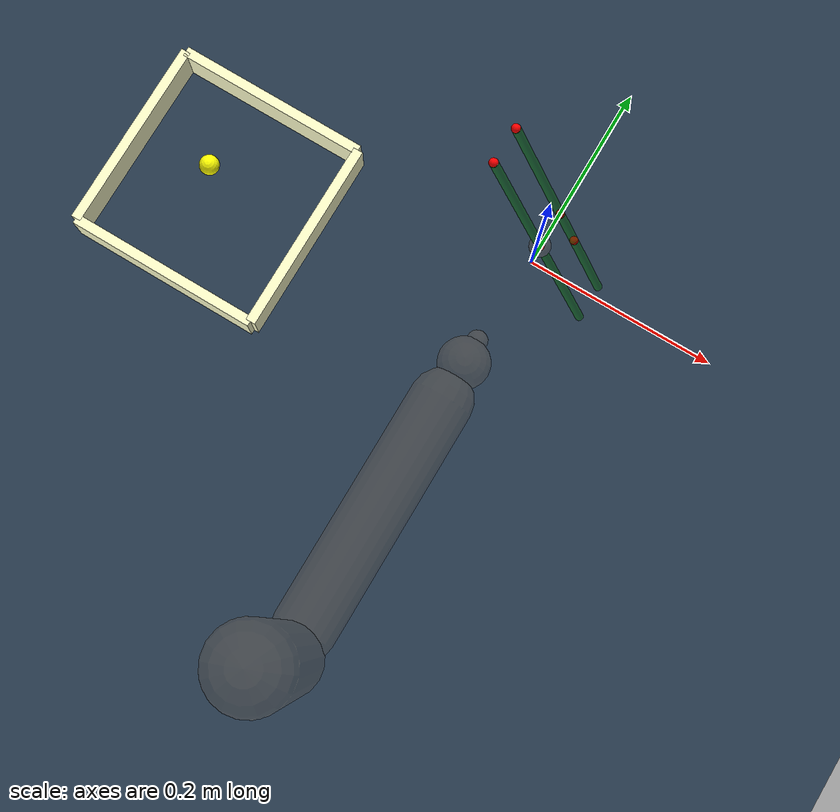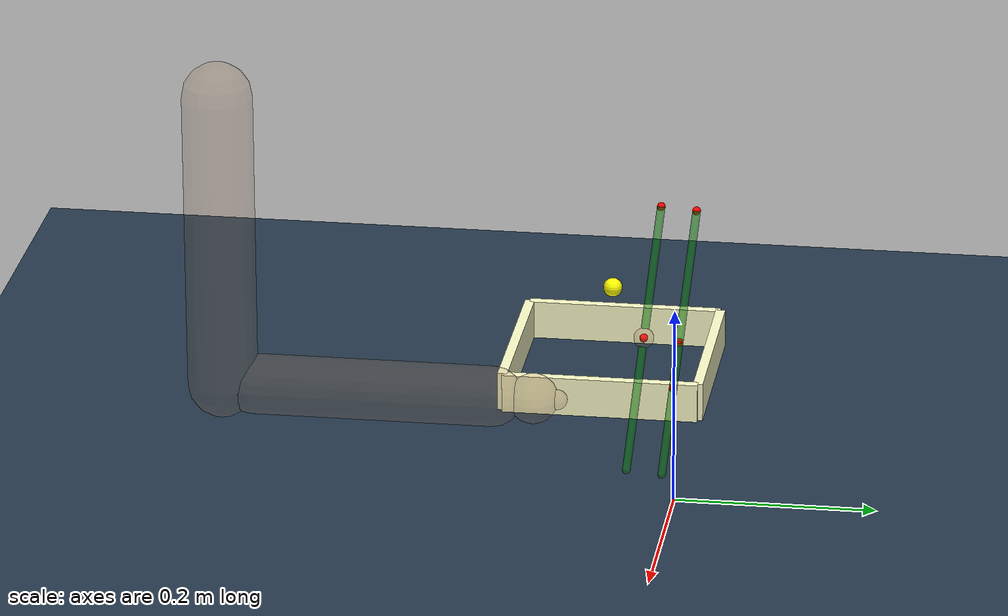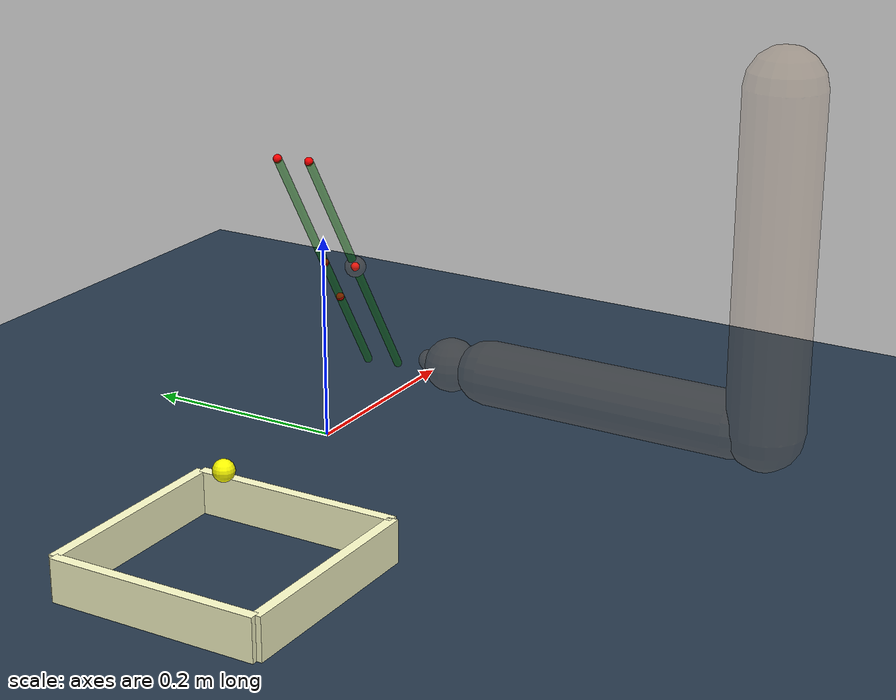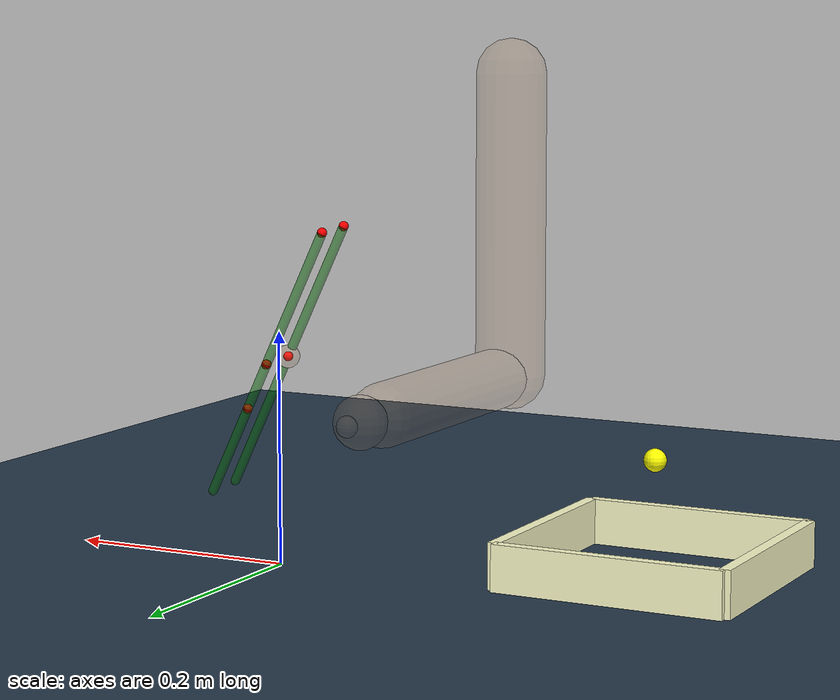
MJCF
<?xml version="1.0" encoding="utf-8"?>
<mujoco>
	<compiler angle="radian"></compiler>
	<size njmax="400" nconmax="100" nuser_jnt="1" nuser_site="1" nuser_tendon="1" nuser_sensor="1" nuser_actuator="16" nstack="600000"></size>
	<option timestep="0.01" iterations="20" apirate="200" noslip_iterations="20"  impratio="10"></option>
	<asset>
		<material name="self" rgba=".7 .5 .3 0.1"/>
		<texture builtin="gradient" height="100" rgb1="1 1 1" rgb2="0 0 0" type="skybox" width="100"/>
		<texture name="texplane" type="2d" builtin="checker" rgb1=".2 .3 .4" rgb2=".1 0.15 0.2" width="512" height="512"></texture>
		<material name="MatGnd" reflectance="0.5" texture="texplane" texrepeat="2 2" texuniform="true"></material>
		<material name="MatPlane" reflectance="0.05" texture="texplane" texrepeat="1 1" texuniform="true"></material>
	</asset>
	<default>
		<default class="Adroit">
			<geom friction="1 0.005 0.001" condim="3" margin="0.000" contype="1" conaffinity="1"></geom>
			<joint limited="true" damping="0.05" armature=".001" margin="0.01" frictionloss="0.001"></joint>
			<tendon limited="true"></tendon>
			<site size="0.005" rgba=".4 .9 .4 0"></site>
			<default class="D_Touch">
				<site type="box" size="0.009 0.004 0.013" pos="0 -.004 .018" rgba=".8 .8 .8 .15" group="4"></site>
			</default>
			<default class="DC_Hand">
				<geom contype="1" conaffinity="0" material="self" group="2"></geom>
			</default>
		</default>
	</default>

	<actuator>
        <motor name="A_UARM1"  joint="UARM1" ctrlrange="-100   100" gear = "1"/>
        <motor name="A_UARM2"  joint="UARM2" ctrlrange="-100   100" gear = "1"/>
        <motor name="A_UARM3"  joint="UARM3" ctrlrange="-100   100" gear = "1"/>
        <motor name="A_FARM1"  joint="FARM1" ctrlrange="-100   100" gear = "1"/>
        <motor name="A_WRJ0" user="2036" joint="WRJ0" ctrlrange="-50   50" gear="1"/>
        <motor name="A_WRJ1" user="2038" joint="WRJ1" ctrlrange="-50   50" gear="1"/>
        <motor name="A_WRJ2" joint="WRJ2" ctrlrange="-50   50" gear="1"/>
        <motor name="A_Rz1" joint="Rz1" ctrlrange="-50   50" gear="1"/>
    </actuator>

	<worldbody>
		<light diffuse="1 1 1" dir="-0 0 -1.3" directional="true" exponent="1" pos="0 0 1.3" specular=".1 .1 .1" castshadow = "false"/>
		<geom name="ground" pos="0 0 0" size="1 1 5" material="MatGnd" type="plane" contype="1" conaffinity="1"></geom>
			<body name="hand mount" pos="0 -.45 0.2" euler="-1.57 0 0">
			<inertial mass="0.100" pos="0 0 0" diaginertia="0.001 0.001 0.001"></inertial>
			<body name = "upperarm" childclass = "Adroit" pos = "0 -0.2 0">
				<geom  name="C_upperasrm1" type="sphere" size = '0.001' pos="0 0 0 " class = 'DC_Hand'/>
				<joint name="UARM1" type="hinge" pos="0 0 0" axis="1 0 0" range="-1.57 1.57" damping="0" armature="1"/>
				<body name = 'upperarm2' pos = '0 0 0'>
					<joint name="UARM2" type="hinge" pos="0 0 0" axis="0 0 1" range="-1.57 0" damping="0" armature="1"/>
					<geom  name="C_upperarm2" type="sphere" size = '0.001' pos="0 0 0 " class = 'DC_Hand'/>
					<body name = 'upperarm3' pos = '0 0 0'>
						<joint name="UARM3" type="hinge" pos="0 0 0" axis="0 -1 0" range="-1.57 1.57" damping="0" armature="1"/>
						<geom class="DC_Hand" name="C_upperarm" type="capsule" size = '0.035 0.15 ' pos="0 0.15 0" euler="-1.57 0 0" />
							<body name="forearm" childclass="Adroit" pos="0 0.3 0" euler="0 0 0">
								<inertial pos="0.001 -0.002 0.15" quat="0.982 -0.016 0.000 -0.188" mass="4" diaginertia="0.01 0.01 0.0075" />
								<joint name="FARM1" type="hinge" pos="0 0 0" axis="1 0 0" range="-1.57 1.57" damping="0" armature="1"/>
								<geom class="DC_Hand" name="C_forearm" type="capsule" size = '0.03 0.12 ' pos="0 -.0 0.15" euler="0 0 -1.57" />
								<!-- ======= Wrist ======= -->
								<body name="wrist" pos="0 0 0.3">
									<inertial pos="0.003 0.000 0.016" quat="0.504 0.496 0.495 0.504" mass="0.3" diaginertia="0.001 0.001 0.001" />
									<joint name="WRJ0" type="hinge" pos="0 0 0" axis="1 0 0" range="-1 1" damping="0" armature=".005" user="1122"/>
									<body name = 'wrist1' pos= '0 0 0'>
										<joint name="WRJ1" type="hinge" pos="0 0 0" axis="0 1 0" range="-1.2 1.2" damping="0" armature=".005" user="1123"/>
										<geom  name="C_wrist1" type="sphere" size = '0.001' pos="0 0 0 " class = 'DC_Hand'/>
											<body name = 'wrist2' pos = '0 0 0'>
												<joint name="WRJ2" type="hinge" pos="0 0 0" axis="0 0 1" range="-3.14 0" damping="0" armature=".005"/>
												<geom class="DC_Hand" name="C_wrist" type="sphere" pos="0 0 0.01"  quat=".707 .707 0 0" size=".025" />
												<body name="palm" pos="0 0 0.034">
													<geom class="DC_Hand" name="C_palm" type="sphere" pos="0 0 0.0"  quat=".707 .707 0 0" size=".01" />
													<body name = "chopstick2" pos = "0.008979768511812026 -0.07416523153174395 0.08645989567905493" quat = "0.6202364218307506 0.5873546323119114 0.386241170823148 0.3480503913192606">
														<geom class="DC_Hand" name="C_hand" type="sphere" pos="0 0 0.0"  quat=".707 .707 0 0" size=".01" />
														<geom name="chopstick2" density="1000" condim="4" size="0.004 0.13" pos="0.0 -0.0 0.0" type="capsule"  quat="0.707 0 0.707 0" friction="1 0.005 0.0001" rgba="0  0.5 0. 0.5"></geom>
														<site name="origin2" pos="-0. 0.0 0.0" size=".0041" type="sphere" rgba="1 0 0 1."></site>
														<site name="end2" pos="-0.13 0.0 0.00" size=".0041" type="sphere" rgba = '1 0 0 1'></site>
														<body name="chopstick1" pos="0.045 0.035 0.0">
															<joint name="Rz1" armature=".01" type="hinge" pos="0 0 0" axis="0 0 1" range="-0.2 0.2"></joint>
															<geom name="chopstick1" density="1000" condim="4" size="0.004 0.13" pos="-0.045 -0.0 0.0" type="capsule" quat="0.707 0 0.707 0" friction="1 0.005 0.0001" rgba="0  0.5 0. 0.5"></geom>
															<site name="origin1" pos="-0.045 0.0 0.0" size=".0041" type="sphere" rgba="1 0 0 1."></site>
															<site name="c_joint" pos="0 0.0 0.0" size=".0041" type="sphere" rgba="1 0 0 1."></site>
															<site name="end1" pos="-0.175 0.0 0.0" size=".0041" type="sphere" rgba = '1 0 0 1'></site>
														</body>
													</body>
												</body>
											</body>
									</body> <!--Palm Ends-->
								</body> <!--Wrist Ends-->
							</body> <!--Forearm/ Hand Actuation Ends-->
					</body>
				</body>
			</body>
		</body>

		<body name="bowl" pos="-0.3 -0.1 0" quat="1.0 0.0 0.0 0.0">
			<geom name="wall1" pos = '-0.1 0 0.02' size = '0.005 0.1 0.02' type="box" rgba="1 1 0.8 1"></geom>
			<geom name="wall2" pos = '0.1 0 0.02' size = '0.005 0.1 0.02' type="box" rgba="1 1 0.8 1"></geom>
			<geom name="wall3" pos = '0 0.1 0.02' size = '0.1 0.005 0.02' type="box" rgba="1 1 0.8 1"></geom>
			<geom name="wall4" pos = '0 -0.1 0.02' size = '0.1 0.005 0.02' type="box" rgba="1 1 0.8 1"></geom>
		</body>

		<body name="object_0" pos="-0.3 -0.1 0.1" quat="1.0 0.0 0.0 0.0">
			<joint name="object_0" type="free" armature="0.0001"></joint>
			<geom name="object_0" size="0.009736723462287586" pos="0 0 0" type="sphere" rgba="1 1 0 1"></geom>
		</body>

	</worldbody>
</mujoco>
